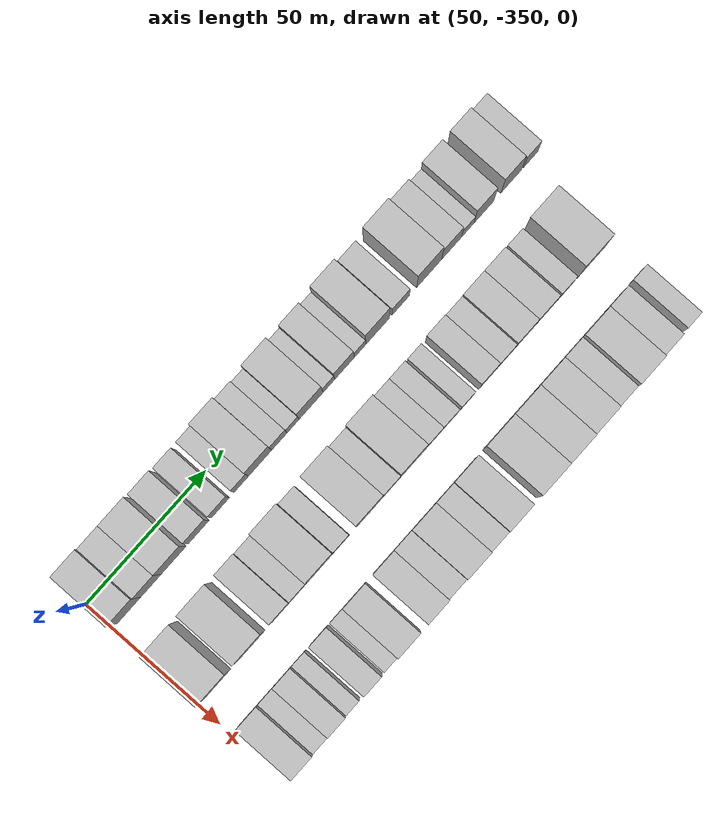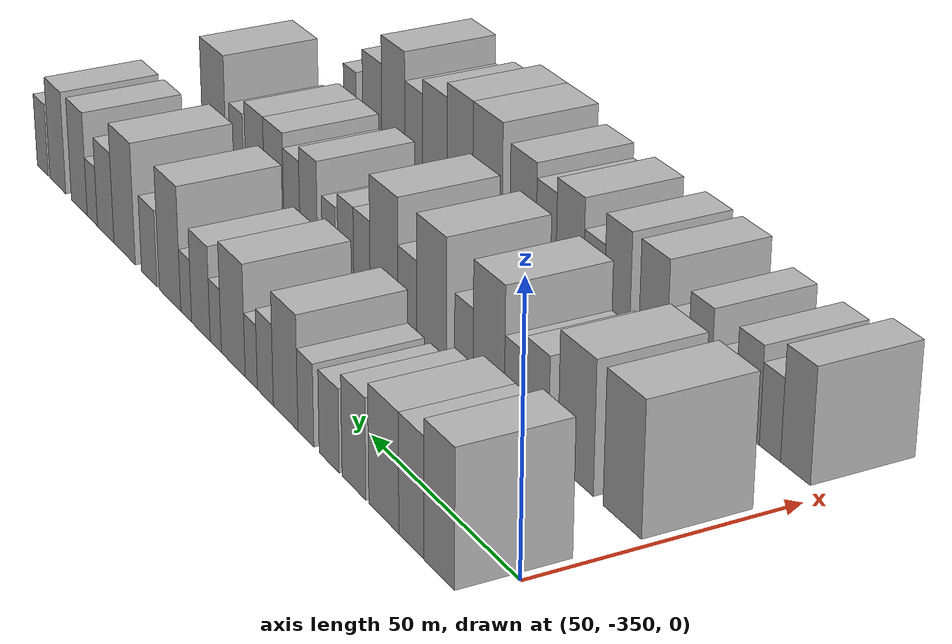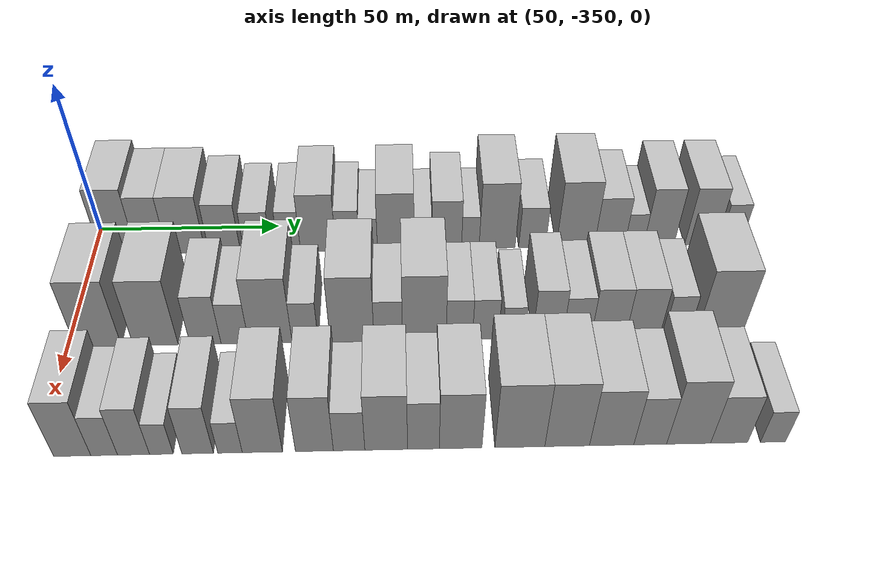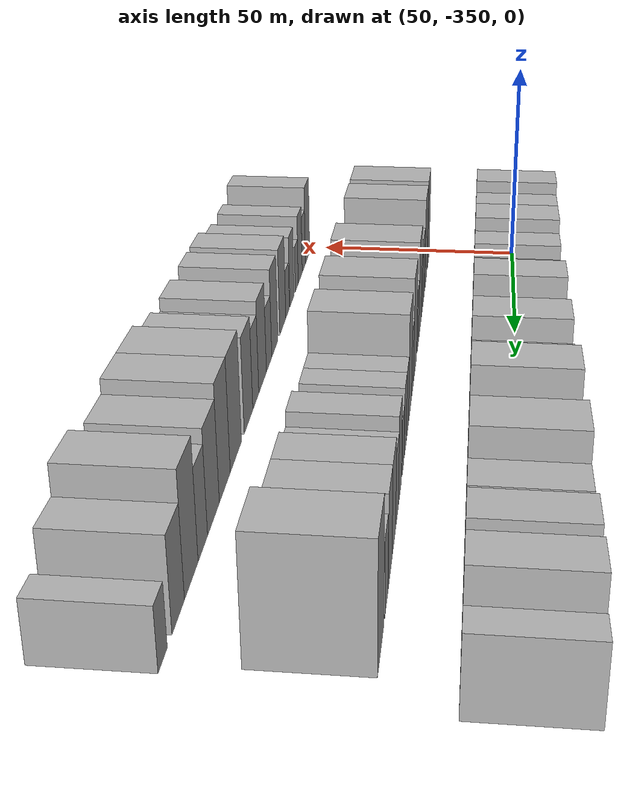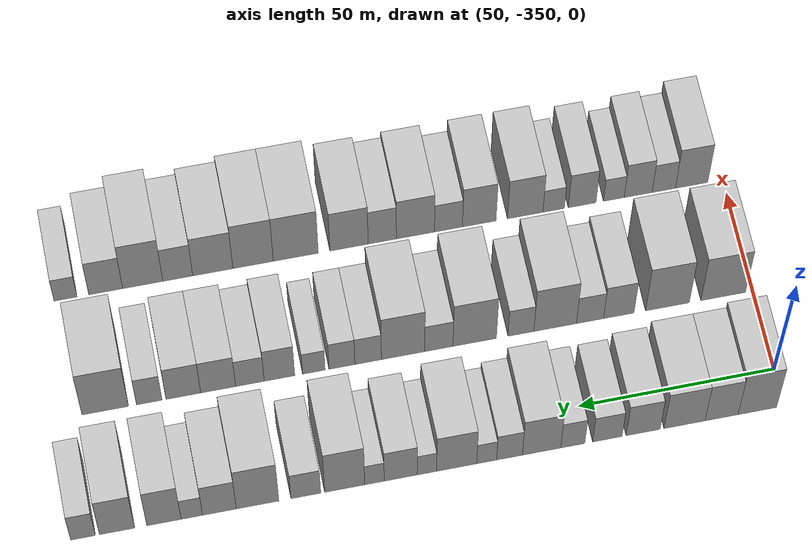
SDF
<sdf version="1.6">
 <world name="default">
  <model name="building_1">
   <static>1</static>
   <pose>50.0000 -343.0840 0 0.000000 0.000000 0.000000</pose>
   <link name="link">
    <pose>0 0 12.00 0 0 0</pose>
    <collision name="collision"><geometry><box><size>20.0000 9.8319 24.0000</size></box></geometry></collision>
    <visual name="visual">
     <cast_shadows>0</cast_shadows>
     <geometry><box><size>20.0000 9.8319 24.0000</size></box></geometry>
     <material>
      <script>
       <uri>model://HANNAS_wall/materials/scripts</uri>
       <uri>model://HANNAS_wall/materials/textures</uri>
       <name>vrc/HANNAS_wall</name>
      </script>
     </material>
    </visual>
   </link>
  </model>
  <model name="building_2">
   <static>1</static>
   <pose>50.0000 -333.9606 0 0.000000 0.000000 0.000000</pose>
   <link name="link">
    <pose>0 0 10.50 0 0 0</pose>
    <collision name="collision"><geometry><box><size>20.0000 8.4149 21.0000</size></box></geometry></collision>
    <visual name="visual">
     <cast_shadows>0</cast_shadows>
     <geometry><box><size>20.0000 8.4149 21.0000</size></box></geometry>
     <material>
      <script>
       <uri>model://HANNAS_wall/materials/scripts</uri>
       <uri>model://HANNAS_wall/materials/textures</uri>
       <name>vrc/HANNAS_wall</name>
      </script>
     </material>
    </visual>
   </link>
  </model>
  <model name="building_3">
   <static>1</static>
   <pose>50.0000 -324.5482 0 0.000000 0.000000 0.000000</pose>
   <link name="link">
    <pose>0 0 10.50 0 0 0</pose>
    <collision name="collision"><geometry><box><size>20.0000 10.4098 21.0000</size></box></geometry></collision>
    <visual name="visual">
     <cast_shadows>0</cast_shadows>
     <geometry><box><size>20.0000 10.4098 21.0000</size></box></geometry>
     <material>
      <script>
       <uri>model://HANNAS_wall/materials/scripts</uri>
       <uri>model://HANNAS_wall/materials/textures</uri>
       <name>vrc/HANNAS_wall</name>
      </script>
     </material>
    </visual>
   </link>
  </model>
  <model name="building_4">
   <static>1</static>
   <pose>50.0000 -314.0322 0 0.000000 0.000000 0.000000</pose>
   <link name="link">
    <pose>0 0 9.00 0 0 0</pose>
    <collision name="collision"><geometry><box><size>20.0000 8.6223 18.0000</size></box></geometry></collision>
    <visual name="visual">
     <cast_shadows>0</cast_shadows>
     <geometry><box><size>20.0000 8.6223 18.0000</size></box></geometry>
     <material>
      <script>
       <uri>model://HANNAS_wall/materials/scripts</uri>
       <uri>model://HANNAS_wall/materials/textures</uri>
       <name>vrc/HANNAS_wall</name>
      </script>
     </material>
    </visual>
   </link>
  </model>
  <model name="building_5">
   <static>1</static>
   <pose>50.0000 -304.9956 0 0.000000 0.000000 0.000000</pose>
   <link name="link">
    <pose>0 0 7.50 0 0 0</pose>
    <collision name="collision"><geometry><box><size>20.0000 7.4509 15.0000</size></box></geometry></collision>
    <visual name="visual">
     <cast_shadows>0</cast_shadows>
     <geometry><box><size>20.0000 7.4509 15.0000</size></box></geometry>
     <material>
      <script>
       <uri>model://HANNAS_wall/materials/scripts</uri>
       <uri>model://HANNAS_wall/materials/textures</uri>
       <name>vrc/HANNAS_wall</name>
      </script>
     </material>
    </visual>
   </link>
  </model>
  <model name="building_6">
   <static>1</static>
   <pose>50.0000 -296.2317 0 0.000000 0.000000 0.000000</pose>
   <link name="link">
    <pose>0 0 7.50 0 0 0</pose>
    <collision name="collision"><geometry><box><size>20.0000 6.0768 15.0000</size></box></geometry></collision>
    <visual name="visual">
     <cast_shadows>0</cast_shadows>
     <geometry><box><size>20.0000 6.0768 15.0000</size></box></geometry>
     <material>
      <script>
       <uri>model://HANNAS_wall/materials/scripts</uri>
       <uri>model://HANNAS_wall/materials/textures</uri>
       <name>vrc/HANNAS_wall</name>
      </script>
     </material>
    </visual>
   </link>
  </model>
  <model name="building_7">
   <static>1</static>
   <pose>50.0000 -288.3532 0 0.000000 0.000000 0.000000</pose>
   <link name="link">
    <pose>0 0 10.50 0 0 0</pose>
    <collision name="collision"><geometry><box><size>20.0000 9.6802 21.0000</size></box></geometry></collision>
    <visual name="visual">
     <cast_shadows>0</cast_shadows>
     <geometry><box><size>20.0000 9.6802 21.0000</size></box></geometry>
     <material>
      <script>
       <uri>model://HANNAS_wall/materials/scripts</uri>
       <uri>model://HANNAS_wall/materials/textures</uri>
       <name>vrc/HANNAS_wall</name>
      </script>
     </material>
    </visual>
   </link>
  </model>
  <model name="building_8">
   <static>1</static>
   <pose>50.0000 -280.2769 0 0.000000 0.000000 0.000000</pose>
   <link name="link">
    <pose>0 0 7.50 0 0 0</pose>
    <collision name="collision"><geometry><box><size>20.0000 6.4725 15.0000</size></box></geometry></collision>
    <visual name="visual">
     <cast_shadows>0</cast_shadows>
     <geometry><box><size>20.0000 6.4725 15.0000</size></box></geometry>
     <material>
      <script>
       <uri>model://HANNAS_wall/materials/scripts</uri>
       <uri>model://HANNAS_wall/materials/textures</uri>
       <name>vrc/HANNAS_wall</name>
      </script>
     </material>
    </visual>
   </link>
  </model>
  <model name="building_9">
   <static>1</static>
   <pose>50.0000 -274.5351 0 0.000000 0.000000 0.000000</pose>
   <link name="link">
    <pose>0 0 6.00 0 0 0</pose>
    <collision name="collision"><geometry><box><size>20.0000 5.0110 12.0000</size></box></geometry></collision>
    <visual name="visual">
     <cast_shadows>0</cast_shadows>
     <geometry><box><size>20.0000 5.0110 12.0000</size></box></geometry>
     <material>
      <script>
       <uri>model://HANNAS_wall/materials/scripts</uri>
       <uri>model://HANNAS_wall/materials/textures</uri>
       <name>vrc/HANNAS_wall</name>
      </script>
     </material>
    </visual>
   </link>
  </model>
  <model name="building_10">
   <static>1</static>
   <pose>50.0000 -266.9859 0 0.000000 0.000000 0.000000</pose>
   <link name="link">
    <pose>0 0 10.50 0 0 0</pose>
    <collision name="collision"><geometry><box><size>20.0000 10.0875 21.0000</size></box></geometry></collision>
    <visual name="visual">
     <cast_shadows>0</cast_shadows>
     <geometry><box><size>20.0000 10.0875 21.0000</size></box></geometry>
     <material>
      <script>
       <uri>model://HANNAS_wall/materials/scripts</uri>
       <uri>model://HANNAS_wall/materials/textures</uri>
       <name>vrc/HANNAS_wall</name>
      </script>
     </material>
    </visual>
   </link>
  </model>
  <model name="building_11">
   <static>1</static>
   <pose>50.0000 -259.5205 0 0.000000 0.000000 0.000000</pose>
   <link name="link">
    <pose>0 0 6.00 0 0 0</pose>
    <collision name="collision"><geometry><box><size>20.0000 4.8433 12.0000</size></box></geometry></collision>
    <visual name="visual">
     <cast_shadows>0</cast_shadows>
     <geometry><box><size>20.0000 4.8433 12.0000</size></box></geometry>
     <material>
      <script>
       <uri>model://HANNAS_wall/materials/scripts</uri>
       <uri>model://HANNAS_wall/materials/textures</uri>
       <name>vrc/HANNAS_wall</name>
      </script>
     </material>
    </visual>
   </link>
  </model>
  <model name="building_12">
   <static>1</static>
   <pose>50.0000 -252.9690 0 0.000000 0.000000 0.000000</pose>
   <link name="link">
    <pose>0 0 9.00 0 0 0</pose>
    <collision name="collision"><geometry><box><size>20.0000 8.2598 18.0000</size></box></geometry></collision>
    <visual name="visual">
     <cast_shadows>0</cast_shadows>
     <geometry><box><size>20.0000 8.2598 18.0000</size></box></geometry>
     <material>
      <script>
       <uri>model://HANNAS_wall/materials/scripts</uri>
       <uri>model://HANNAS_wall/materials/textures</uri>
       <name>vrc/HANNAS_wall</name>
      </script>
     </material>
    </visual>
   </link>
  </model>
  <model name="building_13">
   <static>1</static>
   <pose>50.0000 -246.4065 0 0.000000 0.000000 0.000000</pose>
   <link name="link">
    <pose>0 0 6.00 0 0 0</pose>
    <collision name="collision"><geometry><box><size>20.0000 4.8651 12.0000</size></box></geometry></collision>
    <visual name="visual">
     <cast_shadows>0</cast_shadows>
     <geometry><box><size>20.0000 4.8651 12.0000</size></box></geometry>
     <material>
      <script>
       <uri>model://HANNAS_wall/materials/scripts</uri>
       <uri>model://HANNAS_wall/materials/textures</uri>
       <name>vrc/HANNAS_wall</name>
      </script>
     </material>
    </visual>
   </link>
  </model>
  <model name="building_14">
   <static>1</static>
   <pose>50.0000 -238.9773 0 0.000000 0.000000 0.000000</pose>
   <link name="link">
    <pose>0 0 12.00 0 0 0</pose>
    <collision name="collision"><geometry><box><size>20.0000 9.9932 24.0000</size></box></geometry></collision>
    <visual name="visual">
     <cast_shadows>0</cast_shadows>
     <geometry><box><size>20.0000 9.9932 24.0000</size></box></geometry>
     <material>
      <script>
       <uri>model://HANNAS_wall/materials/scripts</uri>
       <uri>model://HANNAS_wall/materials/textures</uri>
       <name>vrc/HANNAS_wall</name>
      </script>
     </material>
    </visual>
   </link>
  </model>
  <model name="building_15">
   <static>1</static>
   <pose>50.0000 -229.2700 0 0.000000 0.000000 0.000000</pose>
   <link name="link">
    <pose>0 0 7.50 0 0 0</pose>
    <collision name="collision"><geometry><box><size>20.0000 7.4215 15.0000</size></box></geometry></collision>
    <visual name="visual">
     <cast_shadows>0</cast_shadows>
     <geometry><box><size>20.0000 7.4215 15.0000</size></box></geometry>
     <material>
      <script>
       <uri>model://HANNAS_wall/materials/scripts</uri>
       <uri>model://HANNAS_wall/materials/textures</uri>
       <name>vrc/HANNAS_wall</name>
      </script>
     </material>
    </visual>
   </link>
  </model>
  <model name="building_16">
   <static>1</static>
   <pose>50.0000 -217.2736 0 0.000000 0.000000 0.000000</pose>
   <link name="link">
    <pose>0 0 12.00 0 0 0</pose>
    <collision name="collision"><geometry><box><size>20.0000 10.5714 24.0000</size></box></geometry></collision>
    <visual name="visual">
     <cast_shadows>0</cast_shadows>
     <geometry><box><size>20.0000 10.5714 24.0000</size></box></geometry>
     <material>
      <script>
       <uri>model://HANNAS_wall/materials/scripts</uri>
       <uri>model://HANNAS_wall/materials/textures</uri>
       <name>vrc/HANNAS_wall</name>
      </script>
     </material>
    </visual>
   </link>
  </model>
  <model name="building_17">
   <static>1</static>
   <pose>50.0000 -207.7938 0 0.000000 0.000000 0.000000</pose>
   <link name="link">
    <pose>0 0 9.00 0 0 0</pose>
    <collision name="collision"><geometry><box><size>20.0000 8.3881 18.0000</size></box></geometry></collision>
    <visual name="visual">
     <cast_shadows>0</cast_shadows>
     <geometry><box><size>20.0000 8.3881 18.0000</size></box></geometry>
     <material>
      <script>
       <uri>model://HANNAS_wall/materials/scripts</uri>
       <uri>model://HANNAS_wall/materials/textures</uri>
       <name>vrc/HANNAS_wall</name>
      </script>
     </material>
    </visual>
   </link>
  </model>
  <model name="building_18">
   <static>1</static>
   <pose>50.0000 -200.9474 0 0.000000 0.000000 0.000000</pose>
   <link name="link">
    <pose>0 0 6.00 0 0 0</pose>
    <collision name="collision"><geometry><box><size>20.0000 5.3048 12.0000</size></box></geometry></collision>
    <visual name="visual">
     <cast_shadows>0</cast_shadows>
     <geometry><box><size>20.0000 5.3048 12.0000</size></box></geometry>
     <material>
      <script>
       <uri>model://HANNAS_wall/materials/scripts</uri>
       <uri>model://HANNAS_wall/materials/textures</uri>
       <name>vrc/HANNAS_wall</name>
      </script>
     </material>
    </visual>
   </link>
  </model>
  <model name="building_19">
   <static>1</static>
   <pose>50.0000 -194.0669 0 0.000000 0.000000 0.000000</pose>
   <link name="link">
    <pose>0 0 10.50 0 0 0</pose>
    <collision name="collision"><geometry><box><size>20.0000 8.4563 21.0000</size></box></geometry></collision>
    <visual name="visual">
     <cast_shadows>0</cast_shadows>
     <geometry><box><size>20.0000 8.4563 21.0000</size></box></geometry>
     <material>
      <script>
       <uri>model://HANNAS_wall/materials/scripts</uri>
       <uri>model://HANNAS_wall/materials/textures</uri>
       <name>vrc/HANNAS_wall</name>
      </script>
     </material>
    </visual>
   </link>
  </model>
  <model name="building_20">
   <static>1</static>
   <pose>50.0000 -182.4994 0 0.000000 0.000000 0.000000</pose>
   <link name="link">
    <pose>0 0 10.50 0 0 0</pose>
    <collision name="collision"><geometry><box><size>20.0000 8.6786 21.0000</size></box></geometry></collision>
    <visual name="visual">
     <cast_shadows>0</cast_shadows>
     <geometry><box><size>20.0000 8.6786 21.0000</size></box></geometry>
     <material>
      <script>
       <uri>model://HANNAS_wall/materials/scripts</uri>
       <uri>model://HANNAS_wall/materials/textures</uri>
       <name>vrc/HANNAS_wall</name>
      </script>
     </material>
    </visual>
   </link>
  </model>
  <model name="building_21">
   <static>1</static>
   <pose>50.0000 -174.1144 0 0.000000 0.000000 0.000000</pose>
   <link name="link">
    <pose>0 0 7.50 0 0 0</pose>
    <collision name="collision"><geometry><box><size>20.0000 6.0914 15.0000</size></box></geometry></collision>
    <visual name="visual">
     <cast_shadows>0</cast_shadows>
     <geometry><box><size>20.0000 6.0914 15.0000</size></box></geometry>
     <material>
      <script>
       <uri>model://HANNAS_wall/materials/scripts</uri>
       <uri>model://HANNAS_wall/materials/textures</uri>
       <name>vrc/HANNAS_wall</name>
      </script>
     </material>
    </visual>
   </link>
  </model>
  <model name="building_82">
   <static>1</static>
   <pose>82.0000 -342.2259 0 0.000000 0.000000 0.000000</pose>
   <link name="link">
    <pose>0 0 12.00 0 0 0</pose>
    <collision name="collision"><geometry><box><size>20.0000 11.5483 24.0000</size></box></geometry></collision>
    <visual name="visual">
     <cast_shadows>0</cast_shadows>
     <geometry><box><size>20.0000 11.5483 24.0000</size></box></geometry>
     <material>
      <script>
       <uri>model://HANNAS_wall/materials/scripts</uri>
       <uri>model://HANNAS_wall/materials/textures</uri>
       <name>vrc/HANNAS_wall</name>
      </script>
     </material>
    </visual>
   </link>
  </model>
  <model name="building_83">
   <static>1</static>
   <pose>82.0000 -327.8102 0 0.000000 0.000000 0.000000</pose>
   <link name="link">
    <pose>0 0 12.00 0 0 0</pose>
    <collision name="collision"><geometry><box><size>20.0000 11.2831 24.0000</size></box></geometry></collision>
    <visual name="visual">
     <cast_shadows>0</cast_shadows>
     <geometry><box><size>20.0000 11.2831 24.0000</size></box></geometry>
     <material>
      <script>
       <uri>model://HANNAS_wall/materials/scripts</uri>
       <uri>model://HANNAS_wall/materials/textures</uri>
       <name>vrc/HANNAS_wall</name>
      </script>
     </material>
    </visual>
   </link>
  </model>
  <model name="building_84">
   <static>1</static>
   <pose>82.0000 -315.2587 0 0.000000 0.000000 0.000000</pose>
   <link name="link">
    <pose>0 0 9.00 0 0 0</pose>
    <collision name="collision"><geometry><box><size>20.0000 7.8200 18.0000</size></box></geometry></collision>
    <visual name="visual">
     <cast_shadows>0</cast_shadows>
     <geometry><box><size>20.0000 7.8200 18.0000</size></box></geometry>
     <material>
      <script>
       <uri>model://HANNAS_wall/materials/scripts</uri>
       <uri>model://HANNAS_wall/materials/textures</uri>
       <name>vrc/HANNAS_wall</name>
      </script>
     </material>
    </visual>
   </link>
  </model>
  <model name="building_85">
   <static>1</static>
   <pose>82.0000 -307.8539 0 0.000000 0.000000 0.000000</pose>
   <link name="link">
    <pose>0 0 7.50 0 0 0</pose>
    <collision name="collision"><geometry><box><size>20.0000 6.9894 15.0000</size></box></geometry></collision>
    <visual name="visual">
     <cast_shadows>0</cast_shadows>
     <geometry><box><size>20.0000 6.9894 15.0000</size></box></geometry>
     <material>
      <script>
       <uri>model://HANNAS_wall/materials/scripts</uri>
       <uri>model://HANNAS_wall/materials/textures</uri>
       <name>vrc/HANNAS_wall</name>
      </script>
     </material>
    </visual>
   </link>
  </model>
  <model name="building_86">
   <static>1</static>
   <pose>82.0000 -298.8915 0 0.000000 0.000000 0.000000</pose>
   <link name="link">
    <pose>0 0 12.00 0 0 0</pose>
    <collision name="collision"><geometry><box><size>20.0000 10.9354 24.0000</size></box></geometry></collision>
    <visual name="visual">
     <cast_shadows>0</cast_shadows>
     <geometry><box><size>20.0000 10.9354 24.0000</size></box></geometry>
     <material>
      <script>
       <uri>model://HANNAS_wall/materials/scripts</uri>
       <uri>model://HANNAS_wall/materials/textures</uri>
       <name>vrc/HANNAS_wall</name>
      </script>
     </material>
    </visual>
   </link>
  </model>
  <model name="building_87">
   <static>1</static>
   <pose>82.0000 -290.1143 0 0.000000 0.000000 0.000000</pose>
   <link name="link">
    <pose>0 0 7.50 0 0 0</pose>
    <collision name="collision"><geometry><box><size>20.0000 6.6190 15.0000</size></box></geometry></collision>
    <visual name="visual">
     <cast_shadows>0</cast_shadows>
     <geometry><box><size>20.0000 6.6190 15.0000</size></box></geometry>
     <material>
      <script>
       <uri>model://HANNAS_wall/materials/scripts</uri>
       <uri>model://HANNAS_wall/materials/textures</uri>
       <name>vrc/HANNAS_wall</name>
      </script>
     </material>
    </visual>
   </link>
  </model>
  <model name="building_88">
   <static>1</static>
   <pose>82.0000 -278.2535 0 0.000000 0.000000 0.000000</pose>
   <link name="link">
    <pose>0 0 12.00 0 0 0</pose>
    <collision name="collision"><geometry><box><size>20.0000 11.1027 24.0000</size></box></geometry></collision>
    <visual name="visual">
     <cast_shadows>0</cast_shadows>
     <geometry><box><size>20.0000 11.1027 24.0000</size></box></geometry>
     <material>
      <script>
       <uri>model://HANNAS_wall/materials/scripts</uri>
       <uri>model://HANNAS_wall/materials/textures</uri>
       <name>vrc/HANNAS_wall</name>
      </script>
     </material>
    </visual>
   </link>
  </model>
  <model name="building_89">
   <static>1</static>
   <pose>82.0000 -269.1039 0 0.000000 0.000000 0.000000</pose>
   <link name="link">
    <pose>0 0 7.50 0 0 0</pose>
    <collision name="collision"><geometry><box><size>20.0000 7.1964 15.0000</size></box></geometry></collision>
    <visual name="visual">
     <cast_shadows>0</cast_shadows>
     <geometry><box><size>20.0000 7.1964 15.0000</size></box></geometry>
     <material>
      <script>
       <uri>model://HANNAS_wall/materials/scripts</uri>
       <uri>model://HANNAS_wall/materials/textures</uri>
       <name>vrc/HANNAS_wall</name>
      </script>
     </material>
    </visual>
   </link>
  </model>
  <model name="building_90">
   <static>1</static>
   <pose>82.0000 -259.9845 0 0.000000 0.000000 0.000000</pose>
   <link name="link">
    <pose>0 0 12.00 0 0 0</pose>
    <collision name="collision"><geometry><box><size>20.0000 11.0424 24.0000</size></box></geometry></collision>
    <visual name="visual">
     <cast_shadows>0</cast_shadows>
     <geometry><box><size>20.0000 11.0424 24.0000</size></box></geometry>
     <material>
      <script>
       <uri>model://HANNAS_wall/materials/scripts</uri>
       <uri>model://HANNAS_wall/materials/textures</uri>
       <name>vrc/HANNAS_wall</name>
      </script>
     </material>
    </visual>
   </link>
  </model>
  <model name="building_91">
   <static>1</static>
   <pose>82.0000 -251.1044 0 0.000000 0.000000 0.000000</pose>
   <link name="link">
    <pose>0 0 7.50 0 0 0</pose>
    <collision name="collision"><geometry><box><size>20.0000 6.7178 15.0000</size></box></geometry></collision>
    <visual name="visual">
     <cast_shadows>0</cast_shadows>
     <geometry><box><size>20.0000 6.7178 15.0000</size></box></geometry>
     <material>
      <script>
       <uri>model://HANNAS_wall/materials/scripts</uri>
       <uri>model://HANNAS_wall/materials/textures</uri>
       <name>vrc/HANNAS_wall</name>
      </script>
     </material>
    </visual>
   </link>
  </model>
  <model name="building_92">
   <static>1</static>
   <pose>82.0000 -244.4563 0 0.000000 0.000000 0.000000</pose>
   <link name="link">
    <pose>0 0 7.50 0 0 0</pose>
    <collision name="collision"><geometry><box><size>20.0000 6.5784 15.0000</size></box></geometry></collision>
    <visual name="visual">
     <cast_shadows>0</cast_shadows>
     <geometry><box><size>20.0000 6.5784 15.0000</size></box></geometry>
     <material>
      <script>
       <uri>model://HANNAS_wall/materials/scripts</uri>
       <uri>model://HANNAS_wall/materials/textures</uri>
       <name>vrc/HANNAS_wall</name>
      </script>
     </material>
    </visual>
   </link>
  </model>
  <model name="building_93">
   <static>1</static>
   <pose>82.0000 -237.3214 0 0.000000 0.000000 0.000000</pose>
   <link name="link">
    <pose>0 0 6.00 0 0 0</pose>
    <collision name="collision"><geometry><box><size>20.0000 5.6913 12.0000</size></box></geometry></collision>
    <visual name="visual">
     <cast_shadows>0</cast_shadows>
     <geometry><box><size>20.0000 5.6913 12.0000</size></box></geometry>
     <material>
      <script>
       <uri>model://HANNAS_wall/materials/scripts</uri>
       <uri>model://HANNAS_wall/materials/textures</uri>
       <name>vrc/HANNAS_wall</name>
      </script>
     </material>
    </visual>
   </link>
  </model>
  <model name="building_94">
   <static>1</static>
   <pose>82.0000 -228.6165 0 0.000000 0.000000 0.000000</pose>
   <link name="link">
    <pose>0 0 9.00 0 0 0</pose>
    <collision name="collision"><geometry><box><size>20.0000 7.7186 18.0000</size></box></geometry></collision>
    <visual name="visual">
     <cast_shadows>0</cast_shadows>
     <geometry><box><size>20.0000 7.7186 18.0000</size></box></geometry>
     <material>
      <script>
       <uri>model://HANNAS_wall/materials/scripts</uri>
       <uri>model://HANNAS_wall/materials/textures</uri>
       <name>vrc/HANNAS_wall</name>
      </script>
     </material>
    </visual>
   </link>
  </model>
  <model name="building_95">
   <static>1</static>
   <pose>82.0000 -221.1403 0 0.000000 0.000000 0.000000</pose>
   <link name="link">
    <pose>0 0 7.50 0 0 0</pose>
    <collision name="collision"><geometry><box><size>20.0000 7.2338 15.0000</size></box></geometry></collision>
    <visual name="visual">
     <cast_shadows>0</cast_shadows>
     <geometry><box><size>20.0000 7.2338 15.0000</size></box></geometry>
     <material>
      <script>
       <uri>model://HANNAS_wall/materials/scripts</uri>
       <uri>model://HANNAS_wall/materials/textures</uri>
       <name>vrc/HANNAS_wall</name>
      </script>
     </material>
    </visual>
   </link>
  </model>
  <model name="building_96">
   <static>1</static>
   <pose>82.0000 -213.1142 0 0.000000 0.000000 0.000000</pose>
   <link name="link">
    <pose>0 0 9.00 0 0 0</pose>
    <collision name="collision"><geometry><box><size>20.0000 8.8184 18.0000</size></box></geometry></collision>
    <visual name="visual">
     <cast_shadows>0</cast_shadows>
     <geometry><box><size>20.0000 8.8184 18.0000</size></box></geometry>
     <material>
      <script>
       <uri>model://HANNAS_wall/materials/scripts</uri>
       <uri>model://HANNAS_wall/materials/textures</uri>
       <name>vrc/HANNAS_wall</name>
      </script>
     </material>
    </visual>
   </link>
  </model>
  <model name="building_97">
   <static>1</static>
   <pose>82.0000 -204.3503 0 0.000000 0.000000 0.000000</pose>
   <link name="link">
    <pose>0 0 9.00 0 0 0</pose>
    <collision name="collision"><geometry><box><size>20.0000 8.7095 18.0000</size></box></geometry></collision>
    <visual name="visual">
     <cast_shadows>0</cast_shadows>
     <geometry><box><size>20.0000 8.7095 18.0000</size></box></geometry>
     <material>
      <script>
       <uri>model://HANNAS_wall/materials/scripts</uri>
       <uri>model://HANNAS_wall/materials/textures</uri>
       <name>vrc/HANNAS_wall</name>
      </script>
     </material>
    </visual>
   </link>
  </model>
  <model name="building_98">
   <static>1</static>
   <pose>82.0000 -195.7810 0 0.000000 0.000000 0.000000</pose>
   <link name="link">
    <pose>0 0 7.50 0 0 0</pose>
    <collision name="collision"><geometry><box><size>20.0000 6.4290 15.0000</size></box></geometry></collision>
    <visual name="visual">
     <cast_shadows>0</cast_shadows>
     <geometry><box><size>20.0000 6.4290 15.0000</size></box></geometry>
     <material>
      <script>
       <uri>model://HANNAS_wall/materials/scripts</uri>
       <uri>model://HANNAS_wall/materials/textures</uri>
       <name>vrc/HANNAS_wall</name>
      </script>
     </material>
    </visual>
   </link>
  </model>
  <model name="building_99">
   <static>1</static>
   <pose>82.0000 -184.7361 0 0.000000 0.000000 0.000000</pose>
   <link name="link">
    <pose>0 0 12.00 0 0 0</pose>
    <collision name="collision"><geometry><box><size>20.0000 11.6609 24.0000</size></box></geometry></collision>
    <visual name="visual">
     <cast_shadows>0</cast_shadows>
     <geometry><box><size>20.0000 11.6609 24.0000</size></box></geometry>
     <material>
      <script>
       <uri>model://HANNAS_wall/materials/scripts</uri>
       <uri>model://HANNAS_wall/materials/textures</uri>
       <name>vrc/HANNAS_wall</name>
      </script>
     </material>
    </visual>
   </link>
  </model>
  <model name="building_153">
   <static>1</static>
   <pose>114.0000 -341.7568 0 0.000000 0.000000 0.000000</pose>
   <link name="link">
    <pose>0 0 10.50 0 0 0</pose>
    <collision name="collision"><geometry><box><size>20.0000 8.4863 21.0000</size></box></geometry></collision>
    <visual name="visual">
     <cast_shadows>0</cast_shadows>
     <geometry><box><size>20.0000 8.4863 21.0000</size></box></geometry>
     <material>
      <script>
       <uri>model://HANNAS_wall/materials/scripts</uri>
       <uri>model://HANNAS_wall/materials/textures</uri>
       <name>vrc/HANNAS_wall</name>
      </script>
     </material>
    </visual>
   </link>
  </model>
  <model name="building_154">
   <static>1</static>
   <pose>114.0000 -334.4528 0 0.000000 0.000000 0.000000</pose>
   <link name="link">
    <pose>0 0 7.50 0 0 0</pose>
    <collision name="collision"><geometry><box><size>20.0000 6.1218 15.0000</size></box></geometry></collision>
    <visual name="visual">
     <cast_shadows>0</cast_shadows>
     <geometry><box><size>20.0000 6.1218 15.0000</size></box></geometry>
     <material>
      <script>
       <uri>model://HANNAS_wall/materials/scripts</uri>
       <uri>model://HANNAS_wall/materials/textures</uri>
       <name>vrc/HANNAS_wall</name>
      </script>
     </material>
    </visual>
   </link>
  </model>
  <model name="building_155">
   <static>1</static>
   <pose>114.0000 -327.7209 0 0.000000 0.000000 0.000000</pose>
   <link name="link">
    <pose>0 0 9.00 0 0 0</pose>
    <collision name="collision"><geometry><box><size>20.0000 7.3420 18.0000</size></box></geometry></collision>
    <visual name="visual">
     <cast_shadows>0</cast_shadows>
     <geometry><box><size>20.0000 7.3420 18.0000</size></box></geometry>
     <material>
      <script>
       <uri>model://HANNAS_wall/materials/scripts</uri>
       <uri>model://HANNAS_wall/materials/textures</uri>
       <name>vrc/HANNAS_wall</name>
      </script>
     </material>
    </visual>
   </link>
  </model>
  <model name="building_156">
   <static>1</static>
   <pose>114.0000 -321.3479 0 0.000000 0.000000 0.000000</pose>
   <link name="link">
    <pose>0 0 6.00 0 0 0</pose>
    <collision name="collision"><geometry><box><size>20.0000 5.4041 12.0000</size></box></geometry></collision>
    <visual name="visual">
     <cast_shadows>0</cast_shadows>
     <geometry><box><size>20.0000 5.4041 12.0000</size></box></geometry>
     <material>
      <script>
       <uri>model://HANNAS_wall/materials/scripts</uri>
       <uri>model://HANNAS_wall/materials/textures</uri>
       <name>vrc/HANNAS_wall</name>
      </script>
     </material>
    </visual>
   </link>
  </model>
  <model name="building_157">
   <static>1</static>
   <pose>114.0000 -313.0293 0 0.000000 0.000000 0.000000</pose>
   <link name="link">
    <pose>0 0 9.00 0 0 0</pose>
    <collision name="collision"><geometry><box><size>20.0000 7.2330 18.0000</size></box></geometry></collision>
    <visual name="visual">
     <cast_shadows>0</cast_shadows>
     <geometry><box><size>20.0000 7.2330 18.0000</size></box></geometry>
     <material>
      <script>
       <uri>model://HANNAS_wall/materials/scripts</uri>
       <uri>model://HANNAS_wall/materials/textures</uri>
       <name>vrc/HANNAS_wall</name>
      </script>
     </material>
    </visual>
   </link>
  </model>
  <model name="building_158">
   <static>1</static>
   <pose>114.0000 -305.6001 0 0.000000 0.000000 0.000000</pose>
   <link name="link">
    <pose>0 0 6.00 0 0 0</pose>
    <collision name="collision"><geometry><box><size>20.0000 5.6253 12.0000</size></box></geometry></collision>
    <visual name="visual">
     <cast_shadows>0</cast_shadows>
     <geometry><box><size>20.0000 5.6253 12.0000</size></box></geometry>
     <material>
      <script>
       <uri>model://HANNAS_wall/materials/scripts</uri>
       <uri>model://HANNAS_wall/materials/textures</uri>
       <name>vrc/HANNAS_wall</name>
      </script>
     </material>
    </visual>
   </link>
  </model>
  <model name="building_159">
   <static>1</static>
   <pose>114.0000 -298.1717 0 0.000000 0.000000 0.000000</pose>
   <link name="link">
    <pose>0 0 10.50 0 0 0</pose>
    <collision name="collision"><geometry><box><size>20.0000 9.2314 21.0000</size></box></geometry></collision>
    <visual name="visual">
     <cast_shadows>0</cast_shadows>
     <geometry><box><size>20.0000 9.2314 21.0000</size></box></geometry>
     <material>
      <script>
       <uri>model://HANNAS_wall/materials/scripts</uri>
       <uri>model://HANNAS_wall/materials/textures</uri>
       <name>vrc/HANNAS_wall</name>
      </script>
     </material>
    </visual>
   </link>
  </model>
  <model name="building_160">
   <static>1</static>
   <pose>114.0000 -286.1905 0 0.000000 0.000000 0.000000</pose>
   <link name="link">
    <pose>0 0 10.50 0 0 0</pose>
    <collision name="collision"><geometry><box><size>20.0000 8.7311 21.0000</size></box></geometry></collision>
    <visual name="visual">
     <cast_shadows>0</cast_shadows>
     <geometry><box><size>20.0000 8.7311 21.0000</size></box></geometry>
     <material>
      <script>
       <uri>model://HANNAS_wall/materials/scripts</uri>
       <uri>model://HANNAS_wall/materials/textures</uri>
       <name>vrc/HANNAS_wall</name>
      </script>
     </material>
    </visual>
   </link>
  </model>
  <model name="building_161">
   <static>1</static>
   <pose>114.0000 -278.1949 0 0.000000 0.000000 0.000000</pose>
   <link name="link">
    <pose>0 0 7.50 0 0 0</pose>
    <collision name="collision"><geometry><box><size>20.0000 7.2601 15.0000</size></box></geometry></collision>
    <visual name="visual">
     <cast_shadows>0</cast_shadows>
     <geometry><box><size>20.0000 7.2601 15.0000</size></box></geometry>
     <material>
      <script>
       <uri>model://HANNAS_wall/materials/scripts</uri>
       <uri>model://HANNAS_wall/materials/textures</uri>
       <name>vrc/HANNAS_wall</name>
      </script>
     </material>
    </visual>
   </link>
  </model>
  <model name="building_162">
   <static>1</static>
   <pose>114.0000 -269.6429 0 0.000000 0.000000 0.000000</pose>
   <link name="link">
    <pose>0 0 10.50 0 0 0</pose>
    <collision name="collision"><geometry><box><size>20.0000 9.8440 21.0000</size></box></geometry></collision>
    <visual name="visual">
     <cast_shadows>0</cast_shadows>
     <geometry><box><size>20.0000 9.8440 21.0000</size></box></geometry>
     <material>
      <script>
       <uri>model://HANNAS_wall/materials/scripts</uri>
       <uri>model://HANNAS_wall/materials/textures</uri>
       <name>vrc/HANNAS_wall</name>
      </script>
     </material>
    </visual>
   </link>
  </model>
  <model name="building_163">
   <static>1</static>
   <pose>114.0000 -261.0574 0 0.000000 0.000000 0.000000</pose>
   <link name="link">
    <pose>0 0 9.00 0 0 0</pose>
    <collision name="collision"><geometry><box><size>20.0000 7.3269 18.0000</size></box></geometry></collision>
    <visual name="visual">
     <cast_shadows>0</cast_shadows>
     <geometry><box><size>20.0000 7.3269 18.0000</size></box></geometry>
     <material>
      <script>
       <uri>model://HANNAS_wall/materials/scripts</uri>
       <uri>model://HANNAS_wall/materials/textures</uri>
       <name>vrc/HANNAS_wall</name>
      </script>
     </material>
    </visual>
   </link>
  </model>
  <model name="building_164">
   <static>1</static>
   <pose>114.0000 -252.4513 0 0.000000 0.000000 0.000000</pose>
   <link name="link">
    <pose>0 0 10.50 0 0 0</pose>
    <collision name="collision"><geometry><box><size>20.0000 9.8852 21.0000</size></box></geometry></collision>
    <visual name="visual">
     <cast_shadows>0</cast_shadows>
     <geometry><box><size>20.0000 9.8852 21.0000</size></box></geometry>
     <material>
      <script>
       <uri>model://HANNAS_wall/materials/scripts</uri>
       <uri>model://HANNAS_wall/materials/textures</uri>
       <name>vrc/HANNAS_wall</name>
      </script>
     </material>
    </visual>
   </link>
  </model>
  <model name="building_165">
   <static>1</static>
   <pose>114.0000 -238.7191 0 0.000000 0.000000 0.000000</pose>
   <link name="link">
    <pose>0 0 12.00 0 0 0</pose>
    <collision name="collision"><geometry><box><size>20.0000 11.5794 24.0000</size></box></geometry></collision>
    <visual name="visual">
     <cast_shadows>0</cast_shadows>
     <geometry><box><size>20.0000 11.5794 24.0000</size></box></geometry>
     <material>
      <script>
       <uri>model://HANNAS_wall/materials/scripts</uri>
       <uri>model://HANNAS_wall/materials/textures</uri>
       <name>vrc/HANNAS_wall</name>
      </script>
     </material>
    </visual>
   </link>
  </model>
  <model name="building_166">
   <static>1</static>
   <pose>114.0000 -227.7368 0 0.000000 0.000000 0.000000</pose>
   <link name="link">
    <pose>0 0 12.00 0 0 0</pose>
    <collision name="collision"><geometry><box><size>20.0000 10.3852 24.0000</size></box></geometry></collision>
    <visual name="visual">
     <cast_shadows>0</cast_shadows>
     <geometry><box><size>20.0000 10.3852 24.0000</size></box></geometry>
     <material>
      <script>
       <uri>model://HANNAS_wall/materials/scripts</uri>
       <uri>model://HANNAS_wall/materials/textures</uri>
       <name>vrc/HANNAS_wall</name>
      </script>
     </material>
    </visual>
   </link>
  </model>
  <model name="building_167">
   <static>1</static>
   <pose>114.0000 -217.3957 0 0.000000 0.000000 0.000000</pose>
   <link name="link">
    <pose>0 0 10.50 0 0 0</pose>
    <collision name="collision"><geometry><box><size>20.0000 10.2969 21.0000</size></box></geometry></collision>
    <visual name="visual">
     <cast_shadows>0</cast_shadows>
     <geometry><box><size>20.0000 10.2969 21.0000</size></box></geometry>
     <material>
      <script>
       <uri>model://HANNAS_wall/materials/scripts</uri>
       <uri>model://HANNAS_wall/materials/textures</uri>
       <name>vrc/HANNAS_wall</name>
      </script>
     </material>
    </visual>
   </link>
  </model>
  <model name="building_168">
   <static>1</static>
   <pose>114.0000 -208.4119 0 0.000000 0.000000 0.000000</pose>
   <link name="link">
    <pose>0 0 9.00 0 0 0</pose>
    <collision name="collision"><geometry><box><size>20.0000 7.6706 18.0000</size></box></geometry></collision>
    <visual name="visual">
     <cast_shadows>0</cast_shadows>
     <geometry><box><size>20.0000 7.6706 18.0000</size></box></geometry>
     <material>
      <script>
       <uri>model://HANNAS_wall/materials/scripts</uri>
       <uri>model://HANNAS_wall/materials/textures</uri>
       <name>vrc/HANNAS_wall</name>
      </script>
     </material>
    </visual>
   </link>
  </model>
  <model name="building_169">
   <static>1</static>
   <pose>114.0000 -199.4528 0 0.000000 0.000000 0.000000</pose>
   <link name="link">
    <pose>0 0 12.00 0 0 0</pose>
    <collision name="collision"><geometry><box><size>20.0000 10.2476 24.0000</size></box></geometry></collision>
    <visual name="visual">
     <cast_shadows>0</cast_shadows>
     <geometry><box><size>20.0000 10.2476 24.0000</size></box></geometry>
     <material>
      <script>
       <uri>model://HANNAS_wall/materials/scripts</uri>
       <uri>model://HANNAS_wall/materials/textures</uri>
       <name>vrc/HANNAS_wall</name>
      </script>
     </material>
    </visual>
   </link>
  </model>
  <model name="building_170">
   <static>1</static>
   <pose>114.0000 -190.0070 0 0.000000 0.000000 0.000000</pose>
   <link name="link">
    <pose>0 0 9.00 0 0 0</pose>
    <collision name="collision"><geometry><box><size>20.0000 8.6440 18.0000</size></box></geometry></collision>
    <visual name="visual">
     <cast_shadows>0</cast_shadows>
     <geometry><box><size>20.0000 8.6440 18.0000</size></box></geometry>
     <material>
      <script>
       <uri>model://HANNAS_wall/materials/scripts</uri>
       <uri>model://HANNAS_wall/materials/textures</uri>
       <name>vrc/HANNAS_wall</name>
      </script>
     </material>
    </visual>
   </link>
  </model>
  <model name="building_171">
   <static>1</static>
   <pose>114.0000 -179.7629 0 0.000000 0.000000 0.000000</pose>
   <link name="link">
    <pose>0 0 6.00 0 0 0</pose>
    <collision name="collision"><geometry><box><size>20.0000 5.8442 12.0000</size></box></geometry></collision>
    <visual name="visual">
     <cast_shadows>0</cast_shadows>
     <geometry><box><size>20.0000 5.8442 12.0000</size></box></geometry>
     <material>
      <script>
       <uri>model://HANNAS_wall/materials/scripts</uri>
       <uri>model://HANNAS_wall/materials/textures</uri>
       <name>vrc/HANNAS_wall</name>
      </script>
     </material>
    </visual>
   </link>
  </model>
 </world>
</sdf>
